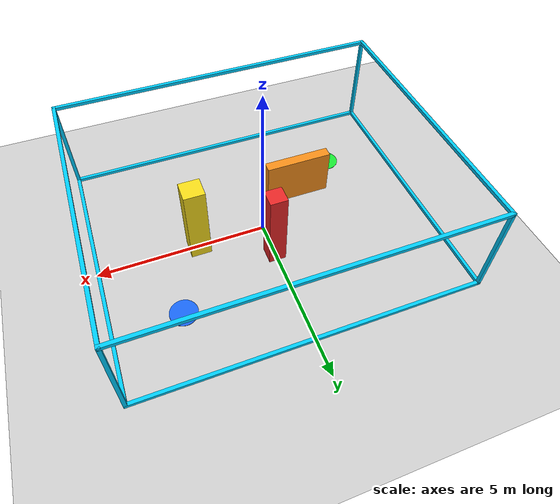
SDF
<?xml version="1.0" ?>
<sdf version="1.9">
  <world name="indoor_10x8x3">
    <physics type="ode">
      <max_step_size>0.004</max_step_size>
      <real_time_factor>1.0</real_time_factor>
      <real_time_update_rate>250</real_time_update_rate>
    </physics>
    <plugin name="gz::sim::systems::Physics" filename="gz-sim-physics-system"/>
    <plugin name="gz::sim::systems::UserCommands" filename="gz-sim-user-commands-system"/>
    <plugin name="gz::sim::systems::SceneBroadcaster" filename="gz-sim-scene-broadcaster-system"/>
    <plugin name="gz::sim::systems::Contact" filename="gz-sim-contact-system"/>
    <plugin name="gz::sim::systems::Imu" filename="gz-sim-imu-system"/>
    <plugin name="gz::sim::systems::AirPressure" filename="gz-sim-air-pressure-system"/>
    <plugin name="gz::sim::systems::ApplyLinkWrench" filename="gz-sim-apply-link-wrench-system"/>
    <plugin name="gz::sim::systems::Sensors" filename="gz-sim-sensors-system">
      <render_engine>ogre2</render_engine>
    </plugin>
    <gui fullscreen="false"/>

    <light type="directional" name="sun">
      <cast_shadows>true</cast_shadows>
      <pose>0 0 10 0 0 0</pose>
      <diffuse>0.8 0.8 0.8 1</diffuse>
      <specular>0.2 0.2 0.2 1</specular>
      <attenuation>
        <range>1000</range>
        <constant>0.9</constant>
        <linear>0.01</linear>
        <quadratic>0.001</quadratic>
      </attenuation>
      <direction>-0.5 0.1 -0.9</direction>
    </light>

    <model name="ground_plane">
      <static>true</static>
      <pose>0 0 0 0 0 0</pose>
      <link name="link">
        <collision name="collision">
          <geometry><plane><normal>0 0 1</normal><size>10 8</size></plane></geometry>
          <surface>
            <friction><ode><mu>100</mu><mu2>50</mu2></ode></friction>
          </surface>
        </collision>
        <visual name="visual">
          <geometry><plane><normal>0 0 1</normal><size>10 8</size></plane></geometry>
          <material>
            <ambient>0.8 0.8 0.8 1</ambient>
            <diffuse>0.8 0.8 0.8 1</diffuse>
          </material>
        </visual>
      </link>
    </model>

    <!-- Invisible Physics Walls with Visual Wireframe -->
    <model name="walls">
      <static>true</static>

      <!-- INVISIBLE COLLISIONS (Solid Walls) -->
      <link name="physics_walls">
        <collision name="c_front"><pose>0 4 1.5 0 0 0</pose><geometry><box><size>10 0.1 3</size></box></geometry></collision>
        <collision name="c_back"><pose>0 -4 1.5 0 0 0</pose><geometry><box><size>10 0.1 3</size></box></geometry></collision>
        <collision name="c_left"><pose>5 0 1.5 0 0 0</pose><geometry><box><size>0.1 8 3</size></box></geometry></collision>
        <collision name="c_right"><pose>-5 0 1.5 0 0 0</pose><geometry><box><size>0.1 8 3</size></box></geometry></collision>
        <collision name="c_ceiling"><pose>0 0 3 0 0 0</pose><geometry><box><size>10 8 0.1</size></box></geometry></collision>

        <!-- VISUAL WIREFRAME (Neon Blue Outlines) -->
        <!-- 4 Vertical Pillars -->
        <visual name="v_p1"><pose>4.95 3.95 1.5 0 0 0</pose><geometry><box><size>0.1 0.1 3</size></box></geometry><material><ambient>0 0.8 1 1</ambient><diffuse>0 0.8 1 1</diffuse></material></visual>
        <visual name="v_p2"><pose>-4.95 3.95 1.5 0 0 0</pose><geometry><box><size>0.1 0.1 3</size></box></geometry><material><ambient>0 0.8 1 1</ambient><diffuse>0 0.8 1 1</diffuse></material></visual>
        <visual name="v_p3"><pose>4.95 -3.95 1.5 0 0 0</pose><geometry><box><size>0.1 0.1 3</size></box></geometry><material><ambient>0 0.8 1 1</ambient><diffuse>0 0.8 1 1</diffuse></material></visual>
        <visual name="v_p4"><pose>-4.95 -3.95 1.5 0 0 0</pose><geometry><box><size>0.1 0.1 3</size></box></geometry><material><ambient>0 0.8 1 1</ambient><diffuse>0 0.8 1 1</diffuse></material></visual>

        <!-- Top Edges -->
        <visual name="v_t1"><pose>0 3.95 3 0 0 0</pose><geometry><box><size>10 0.1 0.1</size></box></geometry><material><ambient>0 0.8 1 1</ambient><diffuse>0 0.8 1 1</diffuse></material></visual>
        <visual name="v_t2"><pose>0 -3.95 3 0 0 0</pose><geometry><box><size>10 0.1 0.1</size></box></geometry><material><ambient>0 0.8 1 1</ambient><diffuse>0 0.8 1 1</diffuse></material></visual>
        <visual name="v_t3"><pose>4.95 0 3 0 0 0</pose><geometry><box><size>0.1 8 0.1</size></box></geometry><material><ambient>0 0.8 1 1</ambient><diffuse>0 0.8 1 1</diffuse></material></visual>
        <visual name="v_t4"><pose>-4.95 0 3 0 0 0</pose><geometry><box><size>0.1 8 0.1</size></box></geometry><material><ambient>0 0.8 1 1</ambient><diffuse>0 0.8 1 1</diffuse></material></visual>

        <!-- Bottom Edges -->
        <visual name="v_b1"><pose>0 3.95 0.05 0 0 0</pose><geometry><box><size>10 0.1 0.1</size></box></geometry><material><ambient>0 0.8 1 1</ambient><diffuse>0 0.8 1 1</diffuse></material></visual>
        <visual name="v_b2"><pose>0 -3.95 0.05 0 0 0</pose><geometry><box><size>10 0.1 0.1</size></box></geometry><material><ambient>0 0.8 1 1</ambient><diffuse>0 0.8 1 1</diffuse></material></visual>
        <visual name="v_b3"><pose>4.95 0 0.05 0 0 0</pose><geometry><box><size>0.1 8 0.1</size></box></geometry><material><ambient>0 0.8 1 1</ambient><diffuse>0 0.8 1 1</diffuse></material></visual>
        <visual name="v_b4"><pose>-4.95 0 0.05 0 0 0</pose><geometry><box><size>0.1 8 0.1</size></box></geometry><material><ambient>0 0.8 1 1</ambient><diffuse>0 0.8 1 1</diffuse></material></visual>
      </link>
    </model>

    <!-- OBSTACLES — 3 objects the drone must avoid     -->

    <!-- Obstacle 1: Tall Red Pillar at (0, 1) -->
    <!-- This sits near the center of the room, blocking the direct path -->
    <model name="obstacle_pillar_red">
      <static>true</static>
      <pose>0 1 1.25 0 0 0</pose>   <!-- Z=1.25 because the box is 2.5m tall, so center is at half-height -->
      <link name="link">
        <collision name="collision">
          <geometry><box><size>0.5 0.5 2.5</size></box></geometry>
        </collision>
        <visual name="visual">
          <geometry><box><size>0.5 0.5 2.5</size></box></geometry>
          <material>
            <ambient>0.9 0.15 0.15 1</ambient>   <!-- Red color -->
            <diffuse>0.9 0.15 0.15 1</diffuse>
          </material>
        </visual>
      </link>
    </model>

    <!-- Obstacle 2: Low Orange Wall at (-1.5, -1) -->
    <!-- A wide-ish, short wall — drone can fly over it or go around -->
    <model name="obstacle_wall_orange">
      <static>true</static>
      <pose>-1.5 -1 0.75 0 0 0</pose>   <!-- Z=0.75 because the wall is 1.5m tall -->
      <link name="link">
        <collision name="collision">
          <geometry><box><size>2.0 0.3 1.5</size></box></geometry>
        </collision>
        <visual name="visual">
          <geometry><box><size>2.0 0.3 1.5</size></box></geometry>
          <material>
            <ambient>0.95 0.55 0.1 1</ambient>   <!-- Orange color -->
            <diffuse>0.95 0.55 0.1 1</diffuse>
          </material>
        </visual>
      </link>
    </model>

    <!-- Obstacle 3: Tall Yellow Pillar at (2, 0) -->
    <!-- On the right side, forces the drone to weave between obstacles -->
    <model name="obstacle_pillar_yellow">
      <static>true</static>
      <pose>2 0 1.25 0 0 0</pose>
      <link name="link">
        <collision name="collision">
          <geometry><box><size>0.6 0.6 2.5</size></box></geometry>
        </collision>
        <visual name="visual">
          <geometry><box><size>0.6 0.6 2.5</size></box></geometry>
          <material>
            <ambient>0.95 0.85 0.1 1</ambient>   <!-- Yellow color -->
            <diffuse>0.95 0.85 0.1 1</diffuse>
          </material>
        </visual>
      </link>
    </model>

    <!-- MARKERS — Start (green) and Destination (blue) -->

    <!-- Start Marker: Green disc on the floor at (-3, -2) -->
    <model name="marker_start">
      <static>true</static>
      <pose>-3 -2 0.01 0 0 0</pose>   <!-- Z=0.01 so it sits just above the floor -->
      <link name="link">
        <visual name="visual">
          <geometry><cylinder><radius>0.4</radius><length>0.02</length></cylinder></geometry>
          <material>
            <ambient>0.1 0.9 0.2 1</ambient>   <!-- Green color -->
            <diffuse>0.1 0.9 0.2 1</diffuse>
          </material>
        </visual>
        <!-- No collision needed — it's just a visual marker, drone can land on it -->
      </link>
    </model>

    <!-- Destination Marker: Blue disc on the floor at (3, 2) -->
    <model name="marker_destination">
      <static>true</static>
      <pose>3 2 0.01 0 0 0</pose>
      <link name="link">
        <visual name="visual">
          <geometry><cylinder><radius>0.4</radius><length>0.02</length></cylinder></geometry>
          <material>
            <ambient>0.1 0.4 0.95 1</ambient>   <!-- Blue color -->
            <diffuse>0.1 0.4 0.95 1</diffuse>
          </material>
        </visual>
      </link>
    </model>

  </world>
</sdf>
